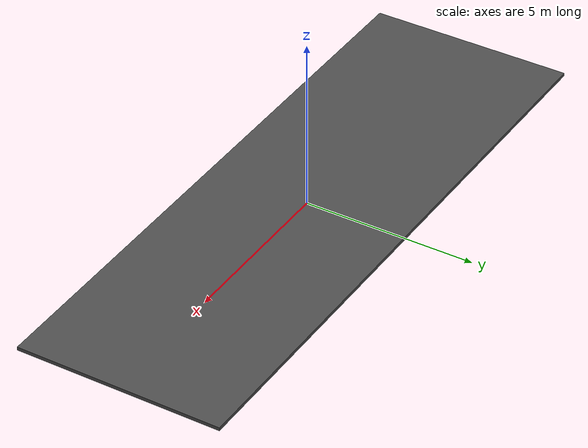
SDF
<?xml version="1.0" ?>
<sdf version="1.5">
  <model name="road_plane_3">
    <static>true</static>
    <link name="link">
      <collision name="collision">
        <geometry>
          <box>
            <size>18 6 .1</size>
          </box>
        </geometry>
      </collision>
      <visual name="visual">
        <cast_shadows>false</cast_shadows>
        <geometry>
          <box>
            <size>18 6 .1</size>
          </box>
        </geometry>
        <material>
          <script>
            <uri>model://road_plane_3/materials/scripts</uri>
            <uri>model://road_plane_3/materials/textures</uri>
            <name>vrc/road3</name>
          </script>
        </material>
      </visual>
    </link>
  </model>
</sdf>
